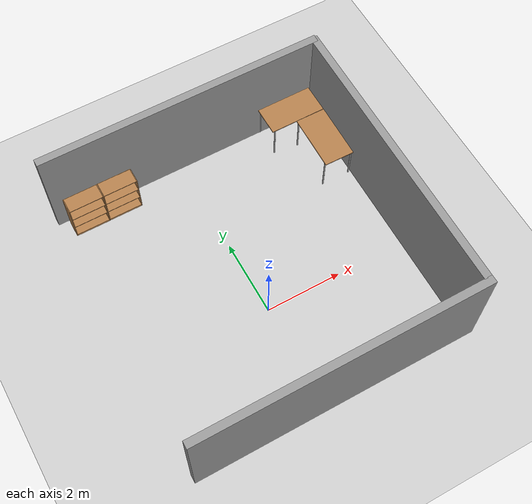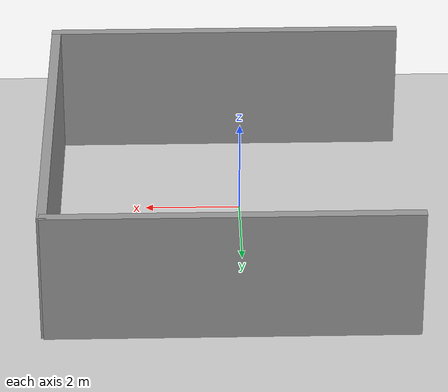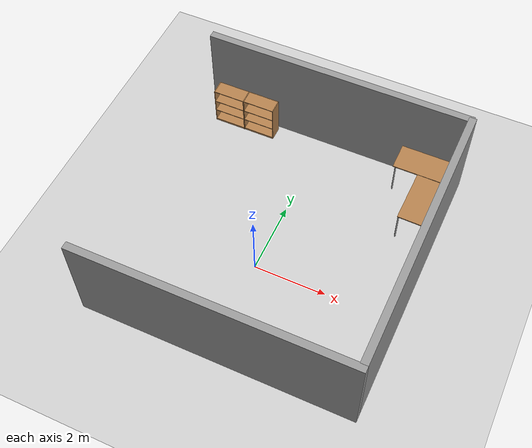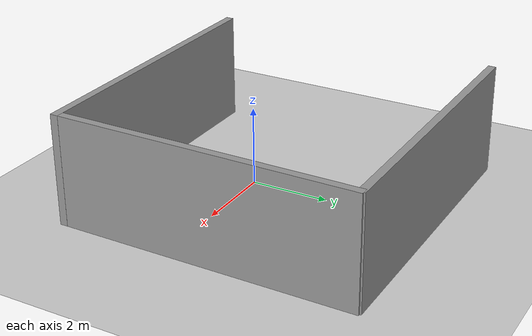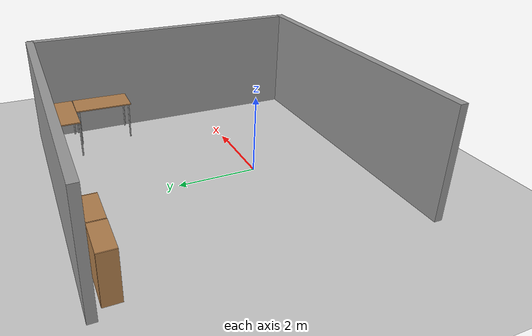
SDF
<sdf version="1.6">
 <world name="default">
  <light name="sun" type="directional">
   <pose>0 0 10 0 -0 0</pose>
   <diffuse>0.8 0.8 0.8 1</diffuse>
   <specular>0.2 0.2 0.2 1</specular>
   <attenuation>
    <range>1000</range>
    <constant>0.9</constant>
    <linear>0.01</linear>
    <quadratic>0.001</quadratic>
   </attenuation>
   <direction>-0.5 0.1 -0.9</direction>
  </light>
  <model name="ground_plane">
   <static>1</static>
   <link name="link">
    <collision name="collision">
     <geometry><plane><normal>0 0 1</normal><size>100 100</size></plane></geometry>
     <surface>
      <contact><collide_bitmask>65535</collide_bitmask></contact>
      <friction><ode><mu>100</mu><mu2>50</mu2></ode></friction>
     </surface>
    </collision>
    <visual name="visual">
     <cast_shadows>0</cast_shadows>
     <geometry><plane><normal>0 0 1</normal><size>100 100</size></plane></geometry>
     <material>
      <script><uri>file://media/materials/scripts/gazebo.material</uri><name>Gazebo/Grey</name></script>
     </material>
    </visual>
   </link>
  </model>
  <gravity>0 0 -9.8</gravity>
  <magnetic_field>6e-06 2.3e-05 -4.2e-05</magnetic_field>
  <atmosphere type="adiabatic"/>
  <physics name="default_physics" default="0" type="ode">
   <max_step_size>0.001</max_step_size>
   <real_time_factor>1</real_time_factor>
   <real_time_update_rate>1000</real_time_update_rate>
  </physics>
  <scene><ambient>0.4 0.4 0.4 1</ambient><background>0.7 0.7 0.7 1</background><shadows>1</shadows></scene>
  <spherical_coordinates>
   <surface_model>EARTH_WGS84</surface_model>
   <latitude_deg>0</latitude_deg>
   <longitude_deg>0</longitude_deg>
   <elevation>0</elevation>
   <heading_deg>0</heading_deg>
  </spherical_coordinates>
  <model name="grey_wall">
   <static>1</static>
   <link name="link">
    <pose>0 0 1.4 0 -0 0</pose>
    <collision name="collision"><geometry><box><size>7.5 0.2 2.8</size></box></geometry></collision>
    <visual name="visual">
     <cast_shadows>0</cast_shadows>
     <geometry><box><size>7.5 0.2 2.8</size></box></geometry>
     <material>
      <script>
       <uri>model://grey_wall/materials/scripts</uri>
       <uri>model://grey_wall/materials/textures</uri>
       <name>vrc/grey_wall</name>
      </script>
     </material>
    </visual>
   </link>
   <pose>0.259032 4.7489 0 0 -0 0</pose>
  </model>
  <model name="grey_wall_clone">
   <static>1</static>
   <link name="link">
    <pose>0 0 1.4 0 -0 0</pose>
    <collision name="collision"><geometry><box><size>7.5 0.2 2.8</size></box></geometry></collision>
    <visual name="visual">
     <cast_shadows>0</cast_shadows>
     <geometry><box><size>7.5 0.2 2.8</size></box></geometry>
     <material>
      <script>
       <uri>model://grey_wall/materials/scripts</uri>
       <uri>model://grey_wall/materials/textures</uri>
       <name>vrc/grey_wall</name>
      </script>
     </material>
    </visual>
   </link>
   <pose>3.93245 1.05916 0 0 0 -1.57729</pose>
  </model>
  <model name="grey_wall_clone_0">
   <static>1</static>
   <link name="link">
    <pose>0 0 1.4 0 -0 0</pose>
    <collision name="collision"><geometry><box><size>7.5 0.2 2.8</size></box></geometry></collision>
    <visual name="visual">
     <cast_shadows>0</cast_shadows>
     <geometry><box><size>7.5 0.2 2.8</size></box></geometry>
     <material>
      <script>
       <uri>model://grey_wall/materials/scripts</uri>
       <uri>model://grey_wall/materials/textures</uri>
       <name>vrc/grey_wall</name>
      </script>
     </material>
    </visual>
   </link>
   <pose>0.259031 -2.77085 0 0 -0 0</pose>
  </model>
  <model name="table">
   <static>1</static>
   <link name="link">
    <collision name="surface">
     <pose>0 0 1 0 -0 0</pose>
     <geometry><box><size>1.5 0.8 0.03</size></box></geometry>
     <surface><friction><ode><mu>0.6</mu><mu2>0.6</mu2></ode></friction></surface>
    </collision>
    <visual name="visual1">
     <pose>0 0 1 0 -0 0</pose>
     <geometry><box><size>1.5 0.8 0.03</size></box></geometry>
     <material>
      <script><uri>file://media/materials/scripts/gazebo.material</uri><name>Gazebo/Wood</name></script>
     </material>
    </visual>
    <collision name="front_left_leg">
     <pose>0.68 0.38 0.5 0 -0 0</pose>
     <geometry><cylinder><radius>0.02</radius><length>1</length></cylinder></geometry>
    </collision>
    <visual name="front_left_leg">
     <pose>0.68 0.38 0.5 0 -0 0</pose>
     <geometry><cylinder><radius>0.02</radius><length>1</length></cylinder></geometry>
     <material>
      <script><uri>file://media/materials/scripts/gazebo.material</uri><name>Gazebo/Grey</name></script>
     </material>
    </visual>
    <collision name="front_right_leg">
     <pose>0.68 -0.38 0.5 0 -0 0</pose>
     <geometry><cylinder><radius>0.02</radius><length>1</length></cylinder></geometry>
    </collision>
    <visual name="front_right_leg">
     <pose>0.68 -0.38 0.5 0 -0 0</pose>
     <geometry><cylinder><radius>0.02</radius><length>1</length></cylinder></geometry>
     <material>
      <script><uri>file://media/materials/scripts/gazebo.material</uri><name>Gazebo/Grey</name></script>
     </material>
    </visual>
    <collision name="back_right_leg">
     <pose>-0.68 -0.38 0.5 0 -0 0</pose>
     <geometry><cylinder><radius>0.02</radius><length>1</length></cylinder></geometry>
    </collision>
    <visual name="back_right_leg">
     <pose>-0.68 -0.38 0.5 0 -0 0</pose>
     <geometry><cylinder><radius>0.02</radius><length>1</length></cylinder></geometry>
     <material>
      <script><uri>file://media/materials/scripts/gazebo.material</uri><name>Gazebo/Grey</name></script>
     </material>
    </visual>
    <collision name="back_left_leg">
     <pose>-0.68 0.38 0.5 0 -0 0</pose>
     <geometry><cylinder><radius>0.02</radius><length>1</length></cylinder></geometry>
    </collision>
    <visual name="back_left_leg">
     <pose>-0.68 0.38 0.5 0 -0 0</pose>
     <geometry><cylinder><radius>0.02</radius><length>1</length></cylinder></geometry>
     <material>
      <script><uri>file://media/materials/scripts/gazebo.material</uri><name>Gazebo/Grey</name></script>
     </material>
    </visual>
   </link>
   <pose>3.0682 4.28019 0 0 -0 0</pose>
  </model>
  <model name="table_clone">
   <static>1</static>
   <link name="link">
    <collision name="surface">
     <pose>0 0 1 0 -0 0</pose>
     <geometry><box><size>1.5 0.8 0.03</size></box></geometry>
     <surface><friction><ode><mu>0.6</mu><mu2>0.6</mu2></ode></friction></surface>
    </collision>
    <visual name="visual1">
     <pose>0 0 1 0 -0 0</pose>
     <geometry><box><size>1.5 0.8 0.03</size></box></geometry>
     <material>
      <script><uri>file://media/materials/scripts/gazebo.material</uri><name>Gazebo/Wood</name></script>
     </material>
    </visual>
    <collision name="front_left_leg">
     <pose>0.68 0.38 0.5 0 -0 0</pose>
     <geometry><cylinder><radius>0.02</radius><length>1</length></cylinder></geometry>
    </collision>
    <visual name="front_left_leg">
     <pose>0.68 0.38 0.5 0 -0 0</pose>
     <geometry><cylinder><radius>0.02</radius><length>1</length></cylinder></geometry>
     <material>
      <script><uri>file://media/materials/scripts/gazebo.material</uri><name>Gazebo/Grey</name></script>
     </material>
    </visual>
    <collision name="front_right_leg">
     <pose>0.68 -0.38 0.5 0 -0 0</pose>
     <geometry><cylinder><radius>0.02</radius><length>1</length></cylinder></geometry>
    </collision>
    <visual name="front_right_leg">
     <pose>0.68 -0.38 0.5 0 -0 0</pose>
     <geometry><cylinder><radius>0.02</radius><length>1</length></cylinder></geometry>
     <material>
      <script><uri>file://media/materials/scripts/gazebo.material</uri><name>Gazebo/Grey</name></script>
     </material>
    </visual>
    <collision name="back_right_leg">
     <pose>-0.68 -0.38 0.5 0 -0 0</pose>
     <geometry><cylinder><radius>0.02</radius><length>1</length></cylinder></geometry>
    </collision>
    <visual name="back_right_leg">
     <pose>-0.68 -0.38 0.5 0 -0 0</pose>
     <geometry><cylinder><radius>0.02</radius><length>1</length></cylinder></geometry>
     <material>
      <script><uri>file://media/materials/scripts/gazebo.material</uri><name>Gazebo/Grey</name></script>
     </material>
    </visual>
    <collision name="back_left_leg">
     <pose>-0.68 0.38 0.5 0 -0 0</pose>
     <geometry><cylinder><radius>0.02</radius><length>1</length></cylinder></geometry>
    </collision>
    <visual name="back_left_leg">
     <pose>-0.68 0.38 0.5 0 -0 0</pose>
     <geometry><cylinder><radius>0.02</radius><length>1</length></cylinder></geometry>
     <material>
      <script><uri>file://media/materials/scripts/gazebo.material</uri><name>Gazebo/Grey</name></script>
     </material>
    </visual>
   </link>
   <pose>3.40612 3.11853 0 0 0 -1.58854</pose>
  </model>
  <model name="bookshelf">
   <static>1</static>
   <link name="link">
    <inertial><mass>1</mass></inertial>
    <collision name="back">
     <pose>0 0.005 0.6 0 -0 0</pose>
     <geometry><box><size>0.9 0.01 1.2</size></box></geometry>
    </collision>
    <visual name="visual1">
     <pose>0 0.005 0.6 0 -0 0</pose>
     <geometry><box><size>0.9 0.01 1.2</size></box></geometry>
     <material>
      <script><uri>file://media/materials/scripts/gazebo.material</uri><name>Gazebo/Wood</name></script>
     </material>
    </visual>
    <collision name="left_side">
     <pose>0.45 -0.195 0.6 0 -0 0</pose>
     <geometry><box><size>0.02 0.4 1.2</size></box></geometry>
    </collision>
    <visual name="visual2">
     <pose>0.45 -0.195 0.6 0 -0 0</pose>
     <geometry><box><size>0.02 0.4 1.2</size></box></geometry>
     <material>
      <script><uri>file://media/materials/scripts/gazebo.material</uri><name>Gazebo/Wood</name></script>
     </material>
    </visual>
    <collision name="right_side">
     <pose>-0.45 -0.195 0.6 0 -0 0</pose>
     <geometry><box><size>0.02 0.4 1.2</size></box></geometry>
    </collision>
    <visual name="visual3">
     <pose>-0.45 -0.195 0.6 0 -0 0</pose>
     <geometry><box><size>0.02 0.4 1.2</size></box></geometry>
     <material>
      <script><uri>file://media/materials/scripts/gazebo.material</uri><name>Gazebo/Wood</name></script>
     </material>
    </visual>
    <collision name="bottom">
     <pose>0 -0.195 0.03 0 -0 0</pose>
     <geometry><box><size>0.88 0.4 0.06</size></box></geometry>
    </collision>
    <visual name="visual4">
     <pose>0 -0.195 0.03 0 -0 0</pose>
     <geometry><box><size>0.88 0.4 0.06</size></box></geometry>
     <material>
      <script><uri>file://media/materials/scripts/gazebo.material</uri><name>Gazebo/Wood</name></script>
     </material>
    </visual>
    <collision name="top">
     <pose>0 -0.195 1.19 0 -0 0</pose>
     <geometry><box><size>0.88 0.4 0.02</size></box></geometry>
    </collision>
    <visual name="visual5">
     <pose>0 -0.195 1.19 0 -0 0</pose>
     <geometry><box><size>0.88 0.4 0.02</size></box></geometry>
     <material>
      <script><uri>file://media/materials/scripts/gazebo.material</uri><name>Gazebo/Wood</name></script>
     </material>
    </visual>
    <collision name="low_shelf">
     <pose>0 -0.195 0.43 0 -0 0</pose>
     <geometry><box><size>0.88 0.4 0.02</size></box></geometry>
    </collision>
    <visual name="visual6">
     <pose>0 -0.195 0.43 0 -0 0</pose>
     <geometry><box><size>0.88 0.4 0.02</size></box></geometry>
     <material>
      <script><uri>file://media/materials/scripts/gazebo.material</uri><name>Gazebo/Wood</name></script>
     </material>
    </visual>
    <collision name="high_shelf">
     <pose>0 -0.195 0.8 0 -0 0</pose>
     <geometry><box><size>0.88 0.4 0.02</size></box></geometry>
    </collision>
    <visual name="visual7">
     <pose>0 -0.195 0.8 0 -0 0</pose>
     <geometry><box><size>0.88 0.4 0.02</size></box></geometry>
     <material>
      <script><uri>file://media/materials/scripts/gazebo.material</uri><name>Gazebo/Wood</name></script>
     </material>
    </visual>
   </link>
   <pose>-2.75254 4.53194 0 0 -0 0</pose>
  </model>
  <model name="bookshelf_clone">
   <static>1</static>
   <link name="link">
    <inertial><mass>1</mass></inertial>
    <collision name="back">
     <pose>0 0.005 0.6 0 -0 0</pose>
     <geometry><box><size>0.9 0.01 1.2</size></box></geometry>
    </collision>
    <visual name="visual1">
     <pose>0 0.005 0.6 0 -0 0</pose>
     <geometry><box><size>0.9 0.01 1.2</size></box></geometry>
     <material>
      <script><uri>file://media/materials/scripts/gazebo.material</uri><name>Gazebo/Wood</name></script>
     </material>
    </visual>
    <collision name="left_side">
     <pose>0.45 -0.195 0.6 0 -0 0</pose>
     <geometry><box><size>0.02 0.4 1.2</size></box></geometry>
    </collision>
    <visual name="visual2">
     <pose>0.45 -0.195 0.6 0 -0 0</pose>
     <geometry><box><size>0.02 0.4 1.2</size></box></geometry>
     <material>
      <script><uri>file://media/materials/scripts/gazebo.material</uri><name>Gazebo/Wood</name></script>
     </material>
    </visual>
    <collision name="right_side">
     <pose>-0.45 -0.195 0.6 0 -0 0</pose>
     <geometry><box><size>0.02 0.4 1.2</size></box></geometry>
    </collision>
    <visual name="visual3">
     <pose>-0.45 -0.195 0.6 0 -0 0</pose>
     <geometry><box><size>0.02 0.4 1.2</size></box></geometry>
     <material>
      <script><uri>file://media/materials/scripts/gazebo.material</uri><name>Gazebo/Wood</name></script>
     </material>
    </visual>
    <collision name="bottom">
     <pose>0 -0.195 0.03 0 -0 0</pose>
     <geometry><box><size>0.88 0.4 0.06</size></box></geometry>
    </collision>
    <visual name="visual4">
     <pose>0 -0.195 0.03 0 -0 0</pose>
     <geometry><box><size>0.88 0.4 0.06</size></box></geometry>
     <material>
      <script><uri>file://media/materials/scripts/gazebo.material</uri><name>Gazebo/Wood</name></script>
     </material>
    </visual>
    <collision name="top">
     <pose>0 -0.195 1.19 0 -0 0</pose>
     <geometry><box><size>0.88 0.4 0.02</size></box></geometry>
    </collision>
    <visual name="visual5">
     <pose>0 -0.195 1.19 0 -0 0</pose>
     <geometry><box><size>0.88 0.4 0.02</size></box></geometry>
     <material>
      <script><uri>file://media/materials/scripts/gazebo.material</uri><name>Gazebo/Wood</name></script>
     </material>
    </visual>
    <collision name="low_shelf">
     <pose>0 -0.195 0.43 0 -0 0</pose>
     <geometry><box><size>0.88 0.4 0.02</size></box></geometry>
    </collision>
    <visual name="visual6">
     <pose>0 -0.195 0.43 0 -0 0</pose>
     <geometry><box><size>0.88 0.4 0.02</size></box></geometry>
     <material>
      <script><uri>file://media/materials/scripts/gazebo.material</uri><name>Gazebo/Wood</name></script>
     </material>
    </visual>
    <collision name="high_shelf">
     <pose>0 -0.195 0.8 0 -0 0</pose>
     <geometry><box><size>0.88 0.4 0.02</size></box></geometry>
    </collision>
    <visual name="visual7">
     <pose>0 -0.195 0.8 0 -0 0</pose>
     <geometry><box><size>0.88 0.4 0.02</size></box></geometry>
     <material>
      <script><uri>file://media/materials/scripts/gazebo.material</uri><name>Gazebo/Wood</name></script>
     </material>
    </visual>
   </link>
   <pose>-1.84101 4.53653 0 0 -0 0</pose>
  </model>
 </world>
</sdf>
